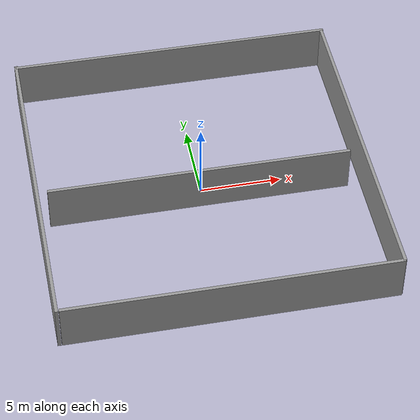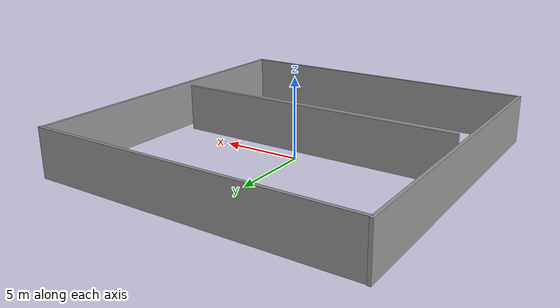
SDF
<?xml version='1.0'?>
<sdf version='1.4'>
  <model name='room'>
    <link name='Wall_57'>
      <collision name='Wall_57_Collision'>
        <geometry>
          <box>
            <size>20.463 0.2 3</size>
          </box>
        </geometry>
        <pose>0 0 1.5 0 -0 0</pose>
      </collision>
      <visual name='Wall_57_Visual'>
        <pose>0 0 1.5 0 -0 0</pose>
        <geometry>
          <box>
            <size>20.463 0.2 3</size>
          </box>
        </geometry>
        <material>
          <script>
            <uri>file://media/materials/scripts/gazebo.material</uri>
            <name>Gazebo/Grey</name>
          </script>
        </material>
      </visual>
      <velocity_decay>
        <linear>0</linear>
        <angular>0</angular>
      </velocity_decay>
      <pose>-10.086 -0.1455 0 0 0 -1.5708</pose>
    </link>
    <link name='Wall_59'>
      <collision name='Wall_59_Collision'>
        <geometry>
          <box>
            <size>20.185 0.2 3</size>
          </box>
        </geometry>
        <pose>0 0 1.5 0 -0 0</pose>
      </collision>
      <visual name='Wall_59_Visual'>
        <pose>0 0 1.5 0 -0 0</pose>
        <geometry>
          <box>
            <size>20.185 0.2 3</size>
          </box>
        </geometry>
        <material>
          <script>
            <uri>file://media/materials/scripts/gazebo.material</uri>
            <name>Gazebo/Grey</name>
          </script>
        </material>
      </visual>
      <velocity_decay>
        <linear>0</linear>
        <angular>0</angular>
      </velocity_decay>
      <pose>9.859 -0.1915 0 0 0 -1.5708</pose>
    </link>
    <link name='Wall_61'>
      <collision name='Wall_61_Collision'>
        <geometry>
          <box>
            <size>20.097 0.2 3</size>
          </box>
        </geometry>
        <pose>0 0 1.5 0 -0 0</pose>
      </collision>
      <visual name='Wall_61_Visual'>
        <pose>0 0 1.5 0 -0 0</pose>
        <geometry>
          <box>
            <size>20.097 0.2 3</size>
          </box>
        </geometry>
        <material>
          <script>
            <uri>file://media/materials/scripts/gazebo.material</uri>
            <name>Gazebo/Grey</name>
          </script>
        </material>
      </visual>
      <velocity_decay>
        <linear>0</linear>
        <angular>0</angular>
      </velocity_decay>
      <pose>-0.0527 9.9312 0 0 -0 0</pose>
    </link>
    <link name='Wall_63'>
      <collision name='Wall_63_Collision'>
        <geometry>
          <box>
            <size>19.831 0.2 3</size>
          </box>
        </geometry>
        <pose>0 0 1.5 0 -0 0</pose>
      </collision>
      <visual name='Wall_63_Visual'>
        <pose>0 0 1.5 0 -0 0</pose>
        <geometry>
          <box>
            <size>19.831 0.2 3</size>
          </box>
        </geometry>
        <material>
          <script>
            <uri>file://media/materials/scripts/gazebo.material</uri>
            <name>Gazebo/Grey</name>
          </script>
        </material>
      </visual>
      <velocity_decay>
        <linear>0</linear>
        <angular>0</angular>
      </velocity_decay>
      <pose>-0.0265 -10.285 0 0 -0 0</pose>
    </link>
    <link name='Wall_65'>
      <collision name='Wall_65_Collision'>
        <geometry>
          <box>
            <size>18.448 0.2 3</size>
          </box>
        </geometry>
        <pose>0 0 1.5 0 -0 0</pose>
      </collision>
      <visual name='Wall_65_Visual'>
        <pose>0 0 1.5 0 -0 0</pose>
        <geometry>
          <box>
            <size>18.448 0.2 3</size>
          </box>
        </geometry>
        <material>
          <script>
            <uri>file://media/materials/scripts/gazebo.material</uri>
            <name>Gazebo/Grey</name>
          </script>
        </material>
      </visual>
      <velocity_decay>
        <linear>0</linear>
        <angular>0</angular>
      </velocity_decay>
      <pose>-0.239 -1.187 0 0 -0 0</pose>
    </link>
    <static>1</static>
  </model>
</sdf>
